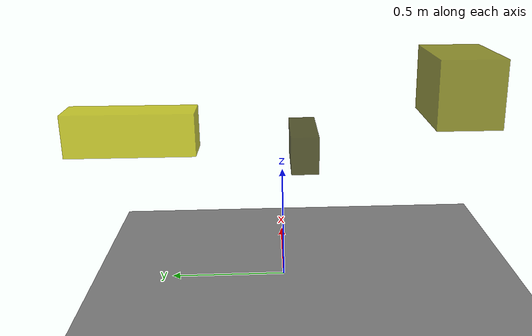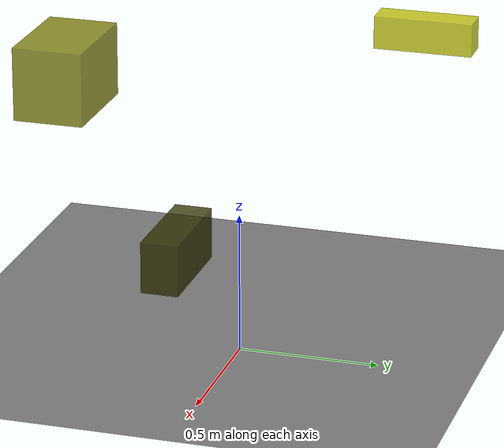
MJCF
<?xml version="1.0"?>
<mujoco model="obstacle_scene">
  <compiler angle="radian" coordinate="local"/>
  <option timestep="0.001" gravity="0 0 -9.81"/>

  <asset>
    <material name="obstacle_mat" rgba="0.8 0.8 0.0 0.8"/>
    <material name="ground_mat" rgba="0.5 0.5 0.5 1"/>
  </asset>

  <worldbody>
    <!-- Ground plane -->
    <geom name="ground" type="plane" size="3 3 0.1" material="ground_mat"/>

    <!-- Obstacles -->
    <body name="obstacle_0" pos="0.362314 -0.109501 0.499197">
      <geom name="obs_0" type="box" size="0.185327 0.064596 0.089343" rgba="0.2 0.2 0.0 0.8"/>
    </body>
    <body name="obstacle_1" pos="-0.185900 -0.695991 0.898386">
      <geom name="obs_1" type="box" size="0.189893 0.126206 0.132761" rgba="0.5 0.5 0.0 0.8"/>
    </body>
    <body name="obstacle_2" pos="-0.893875 0.433038 0.929669">
      <geom name="obs_2" type="box" size="0.054853 0.181033 0.060886" rgba="0.8 0.8 0.0 0.8"/>
    </body>
  </worldbody>
</mujoco>
